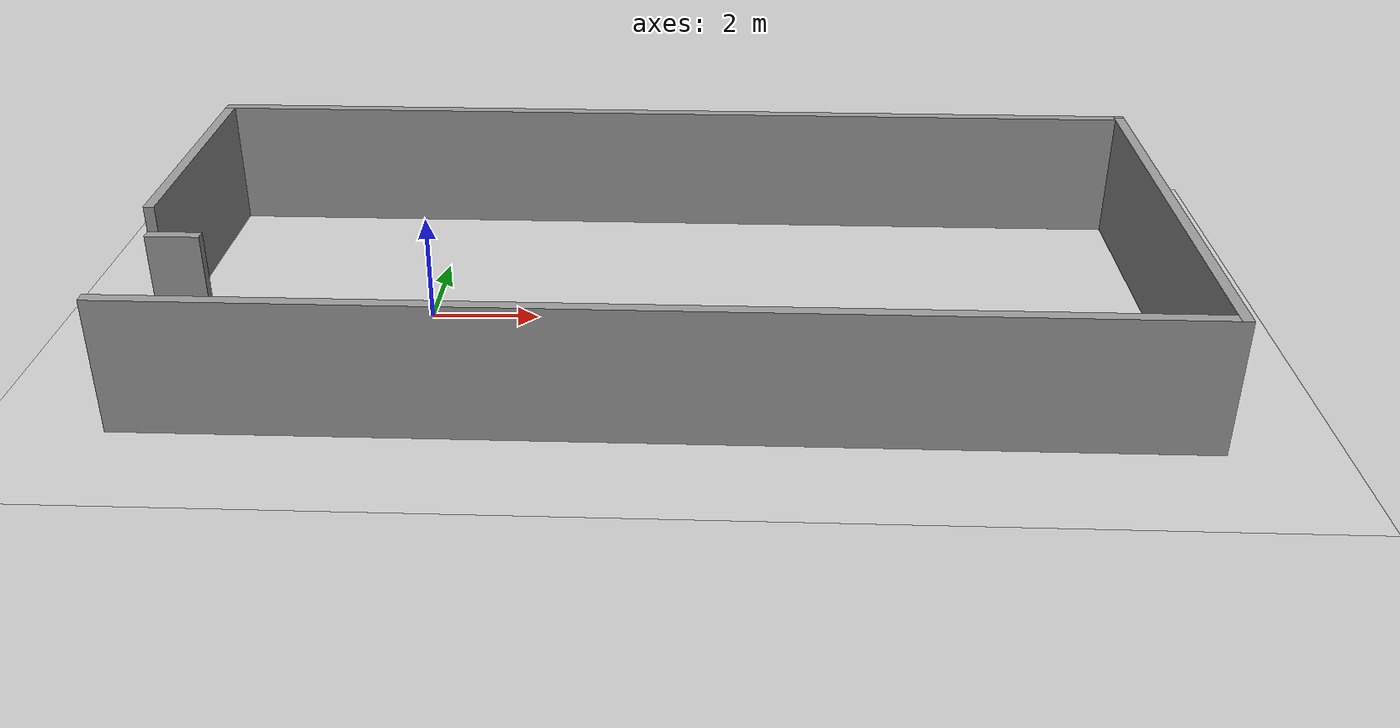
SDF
<sdf version="1.4">
 <world name="default">
  <light name="sun" type="directional">
   <pose>0 0 10 0 -0 0</pose>
   <diffuse>0.8 0.8 0.8 1</diffuse>
   <specular>0.2 0.2 0.2 1</specular>
   <attenuation>
    <range>1000</range>
    <constant>0.9</constant>
    <linear>0.01</linear>
    <quadratic>0.001</quadratic>
   </attenuation>
   <direction>-0.5 0.1 -0.9</direction>
  </light>
  <model name="ground_plane">
   <static>1</static>
   <link name="link">
    <collision name="collision">
     <geometry><plane><normal>0 0 1</normal><size>100 100</size></plane></geometry>
     <surface><friction><ode><mu>100</mu><mu2>50</mu2></ode></friction></surface>
    </collision>
    <visual name="visual">
     <cast_shadows>0</cast_shadows>
     <geometry><plane><normal>0 0 1</normal><size>100 100</size></plane></geometry>
     <material>
      <script><uri>file://media/materials/scripts/gazebo.material</uri><name>Gazebo/Grey</name></script>
     </material>
    </visual>
    <velocity_decay><linear>0</linear><angular>0</angular></velocity_decay>
   </link>
  </model>
  <physics type="ode">
   <max_step_size>0.01</max_step_size>
   <real_time_factor>1</real_time_factor>
   <real_time_update_rate>100</real_time_update_rate>
   <gravity>0 0 -9.8</gravity>
  </physics>
  <scene><ambient>0.4 0.4 0.4 1</ambient><background>0.7 0.7 0.7 1</background><shadows>1</shadows></scene>
  <model name="house1">
   <link name="Door_4">
    <collision name="Door_4_Collision">
     <geometry><box><size>1 0.2 2</size></box></geometry>
     <pose>0 0 1 0 -0 0</pose>
    </collision>
    <visual name="Door_4_Visual">
     <pose>0 0 1 0 -0 0</pose>
     <geometry><box><size>1 0.2 2</size></box></geometry>
     <material>
      <script><uri>file://media/materials/scripts/gazebo.material</uri><name>Gazebo/Grey</name></script>
     </material>
    </visual>
    <velocity_decay><linear>0</linear><angular>0</angular></velocity_decay>
    <pose>-6.45066 -0.746043 0 0 -0 0</pose>
   </link>
   <link name="Wall_13">
    <collision name="Wall_13_Collision">
     <geometry><box><size>18.4624 0.2 2.5</size></box></geometry>
     <pose>0 0 1.25 0 -0 0</pose>
    </collision>
    <visual name="Wall_13_Visual">
     <pose>0 0 1.25 0 -0 0</pose>
     <geometry><box><size>18.4624 0.2 2.5</size></box></geometry>
     <material>
      <script><uri>file://media/materials/scripts/gazebo.material</uri><name>Gazebo/Grey</name></script>
     </material>
    </visual>
    <velocity_decay><linear>0</linear><angular>0</angular></velocity_decay>
    <pose>2.46639 -4.0192 0 0 -0 0</pose>
   </link>
   <link name="Wall_14">
    <collision name="Wall_14_Collision">
     <geometry><box><size>8.52054 0.2 2.5</size></box></geometry>
     <pose>0 0 1.25 0 -0 0</pose>
    </collision>
    <visual name="Wall_14_Visual">
     <pose>0 0 1.25 0 -0 0</pose>
     <geometry><box><size>8.52054 0.2 2.5</size></box></geometry>
     <material>
      <script><uri>file://media/materials/scripts/gazebo.material</uri><name>Gazebo/Grey</name></script>
     </material>
    </visual>
    <velocity_decay><linear>0</linear><angular>0</angular></velocity_decay>
    <pose>11.5976 0.141074 0 0 -0 1.5708</pose>
   </link>
   <link name="Wall_15">
    <collision name="Wall_15_Collision">
     <geometry><box><size>18.6459 0.2 2.5</size></box></geometry>
     <pose>0 0 1.25 0 -0 0</pose>
    </collision>
    <visual name="Wall_15_Visual">
     <pose>0 0 1.25 0 -0 0</pose>
     <geometry><box><size>18.6459 0.2 2.5</size></box></geometry>
     <material>
      <script><uri>file://media/materials/scripts/gazebo.material</uri><name>Gazebo/Grey</name></script>
     </material>
    </visual>
    <velocity_decay><linear>0</linear><angular>0</angular></velocity_decay>
    <pose>2.37462 4.30135 0 0 -0 3.14159</pose>
   </link>
   <link name="Wall_16">
    <collision name="Wall_16_Collision">
     <geometry><box><size>5.06385 0.2 2.5</size></box></geometry>
     <pose>0 0 1.25 0 -0 0</pose>
    </collision>
    <visual name="Wall_16_Visual">
     <pose>0 0 1.25 0 -0 0</pose>
     <geometry><box><size>5.06385 0.2 2.5</size></box></geometry>
     <material>
      <script><uri>file://media/materials/scripts/gazebo.material</uri><name>Gazebo/Grey</name></script>
     </material>
    </visual>
    <velocity_decay><linear>0</linear><angular>0</angular></velocity_decay>
    <pose>-6.84833 1.86942 0 0 0 -1.5708</pose>
   </link>
   <static>1</static>
   <pose>2 0 0 0 -0 0</pose>
  </model>
 </world>
</sdf>
